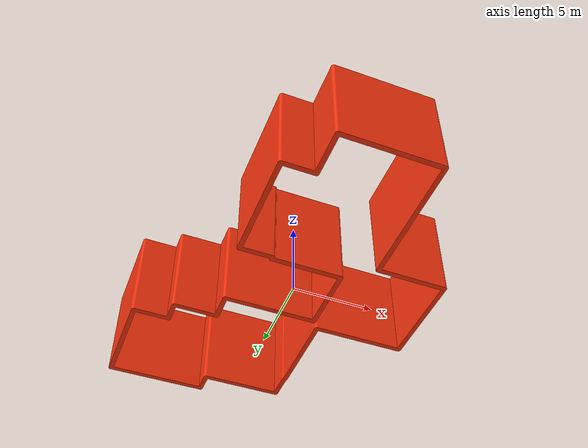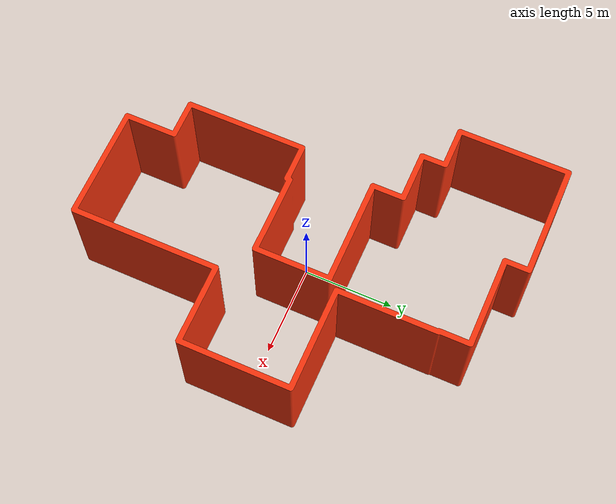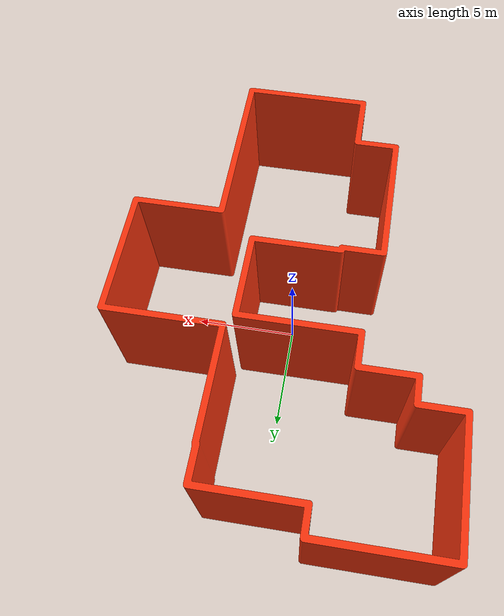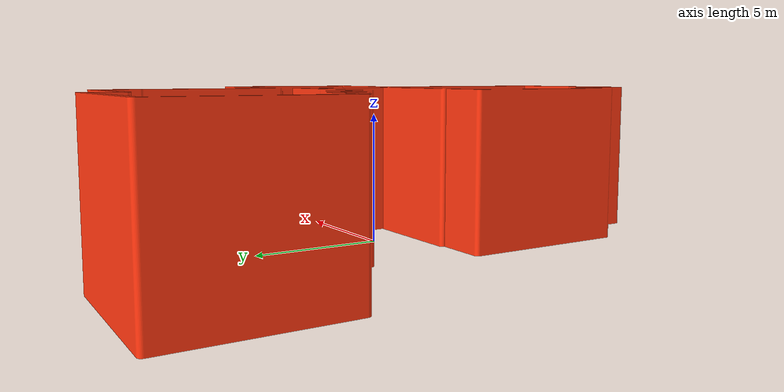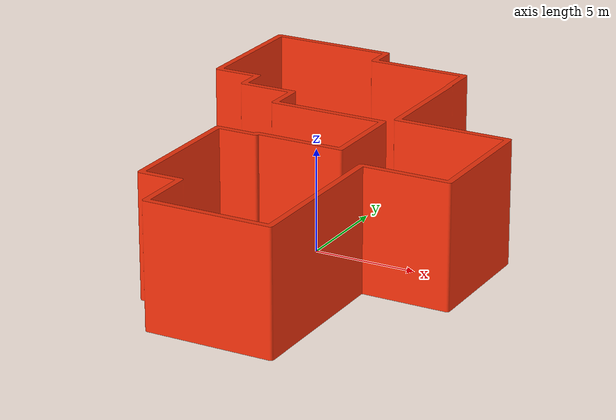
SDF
<?xml version="1.0" ?>
<sdf version="1.6">
  <model name="walls_6">
    <pose frame="">0 0 3 0 -0 0</pose>
    <static>1</static>
    <self_collide>0</self_collide>
    <allow_auto_disable>0</allow_auto_disable>
    <link name="mesh">
      <kinematic>0</kinematic>
      <gravity>1</gravity>
      <self_collide>0</self_collide>
      <collision name="collision">
        <geometry>
          <mesh>
            <uri>model://walls_6/meshes/uIzRWEbFZR.stl</uri>
            <scale>1 1 1</scale>
          </mesh>
        </geometry>
        <pose frame="">3.56165 0.9256 -3 0 -0 0</pose>
        <max_contacts>20</max_contacts>
      </collision>
      <visual name="visual">
        <geometry>
          <mesh>
            <uri>model://walls_6/meshes/MYTpmSvbkc.stl</uri>
            <scale>1 1 1</scale>
          </mesh>
        </geometry>
        <material>
          <ambient>0.956863 0.196078 0.0470588 1</ambient>
          <diffuse>0.9568627450980393 0.19607843137254902 0.047058823529411764 1</diffuse>
        </material>
        <pose frame="">3.56165 0.9256 -3 0 -0 0</pose>
        <cast_shadows>1</cast_shadows>
        <transparency>0.0</transparency>
      </visual>
      <pose frame="">0 0 0 0 -0 0</pose>
    </link>
  </model>
</sdf>
